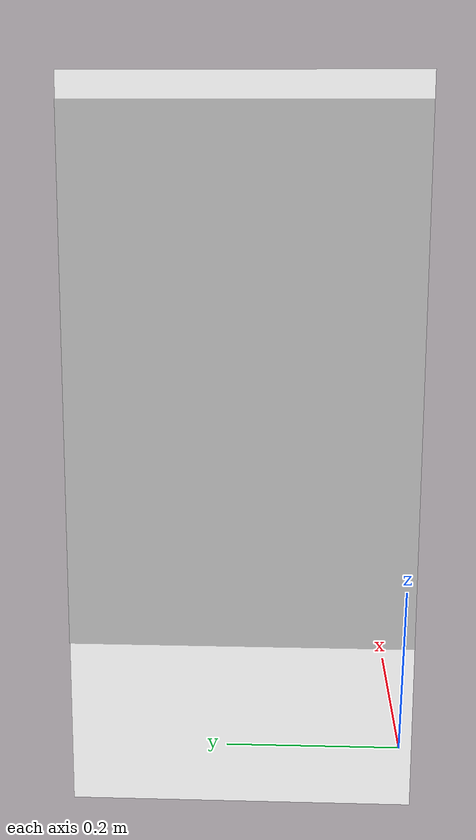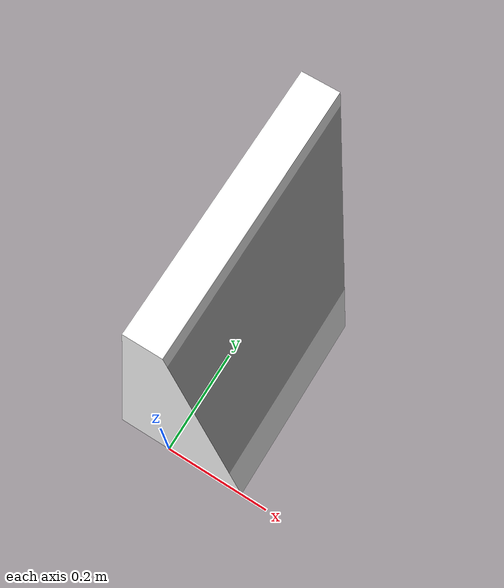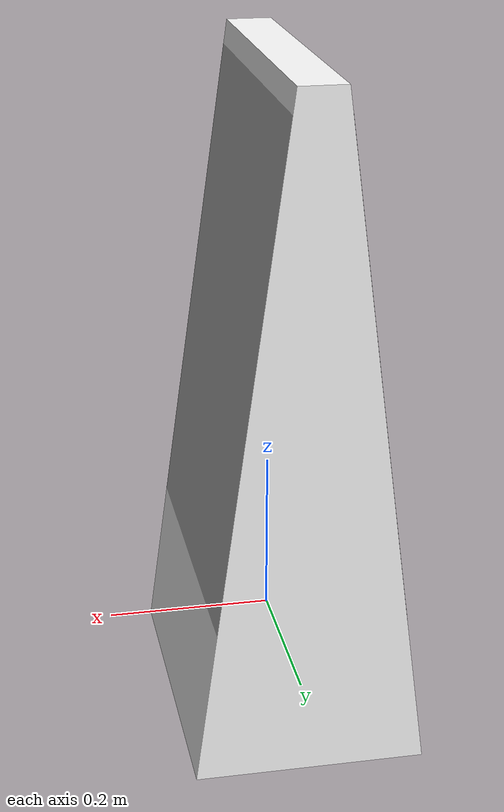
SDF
<?xml version='1.0'?>
<sdf version='1.4'>
    <model name="construction_sign">
        <static>true</static>
	    <link name="link">
		<collision name="collision">
		  <geometry>
			<mesh>
			    <uri>model://construction_sign/meshes/construction_sign.dae</uri>
			</mesh>
		    </geometry>
		</collision>
		<visual name='visual'>
		    <geometry>
			<mesh>
			    <uri>model://construction_sign/meshes/construction_sign.dae</uri>
			</mesh>
		    </geometry>
		</visual>
	    </link>
    </model>
</sdf>
